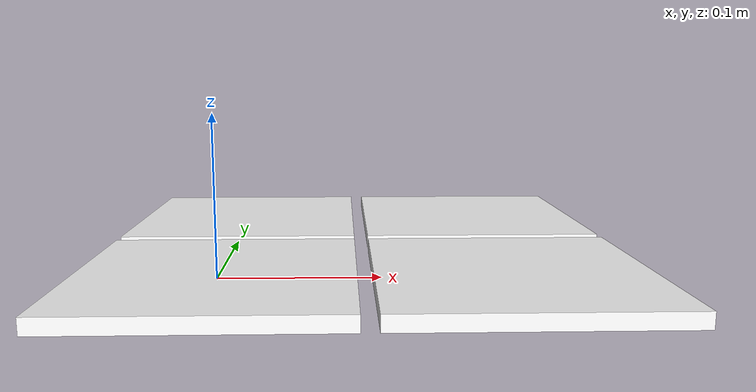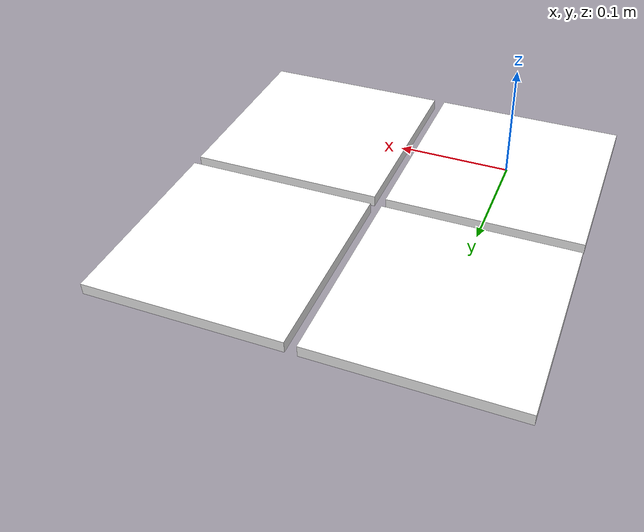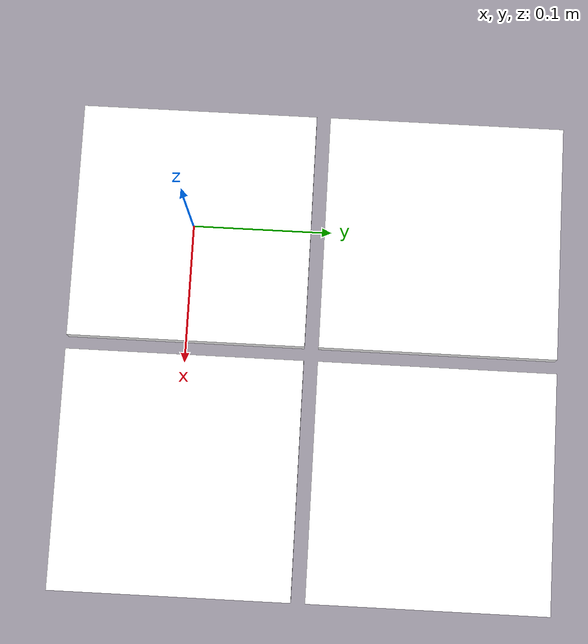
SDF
<sdf version='1.7'>
  <model name='apriltag_board'>
    <link name='tag_0'>
      <pose>0 0 0 0 -0 0</pose>
      <visual name='main_Visual'>
      <pose>0 0 0 0 0 3.14159</pose>
        <geometry>
          <box>
            <size>0.17 0.17 0.01</size>
          </box>
        </geometry>
        <material>
          <ambient>1 1 1 1</ambient>
          <diffuse>1 1 1 1</diffuse>
          <specular>0.1 0.1 0.1 1</specular>
          <pbr>
            <metal>
              <albedo_map>model://Apriltag36_11_00000/materials/textures/tag36_11_00000.png</albedo_map>
              <roughness>0.9</roughness>
              <metalness>0</metalness>
            </metal>
          </pbr>
          <script>
            <uri>model://Apriltag36_11_00000/materials/scripts</uri>
            <uri>model://Apriltag36_11_00000/materials/textures</uri>
            <name>Apriltag36_11_00000</name>
          </script>
        </material>
      </visual>
      <self_collide>0</self_collide>
      <enable_wind>0</enable_wind>
      <kinematic>0</kinematic>
    </link>
    <link name='tag_1'>
      <pose>0.18 0 0 0 -0 0</pose>
      <visual name='main_Visual'>
      <pose>0 0 0 0 0 3.14159</pose>
        <geometry>
          <box>
            <size>0.17 0.17 0.01</size>
          </box>
        </geometry>
        <material>
          <ambient>1 1 1 1</ambient>
          <diffuse>1 1 1 1</diffuse>
          <specular>0.1 0.1 0.1 1</specular>
          <pbr>
            <metal>
              <albedo_map>model://Apriltag36_11_00001/materials/textures/tag36_11_00001.png</albedo_map>
              <roughness>0.9</roughness>
              <metalness>0</metalness>
            </metal>
          </pbr>
          <script>
            <uri>model://Apriltag36_11_00001/materials/scripts</uri>
            <uri>model://Apriltag36_11_00001/materials/textures</uri>
            <name>Apriltag36_11_00001</name>
          </script>
        </material>
      </visual>
      <self_collide>0</self_collide>
      <enable_wind>0</enable_wind>
      <kinematic>0</kinematic>
    </link>
    <link name='tag_2'>
      <pose>0.18 0.18 0 0 -0 0</pose>
      <visual name='main_Visual'>
      <pose>0 0 0 0 0 3.14159</pose>
        <geometry>
          <box>
            <size>0.17 0.17 0.01</size>
          </box>
        </geometry>
        <material>
          <ambient>1 1 1 1</ambient>
          <diffuse>1 1 1 1</diffuse>
          <specular>0.1 0.1 0.1 1</specular>
          <pbr>
            <metal>
              <albedo_map>model://Apriltag36_11_00002/materials/textures/tag36_11_00002.png</albedo_map>
              <roughness>0.9</roughness>
              <metalness>0</metalness>
            </metal>
          </pbr>
          <script>
            <uri>model://Apriltag36_11_00002/materials/scripts</uri>
            <uri>model://Apriltag36_11_00002/materials/textures</uri>
            <name>Apriltag36_11_00002</name>
          </script>
        </material>
      </visual>
      <self_collide>0</self_collide>
      <enable_wind>0</enable_wind>
      <kinematic>0</kinematic>
    </link>
    <link name='tag_3'>
      <pose>0 0.18 0 0 -0 0</pose>
      <visual name='main_Visual'>
      <pose>0 0 0 0 0 3.14159</pose>
        <geometry>
          <box>
            <size>0.17 0.17 0.01</size>
          </box>
        </geometry>
        <material>
          <ambient>1 1 1 1</ambient>
          <diffuse>1 1 1 1</diffuse>
          <specular>0.1 0.1 0.1 1</specular>
          <pbr>
            <metal>
              <albedo_map>model://Apriltag36_11_00003/materials/textures/tag36_11_00003.png</albedo_map>
              <roughness>0.9</roughness>
              <metalness>0</metalness>
            </metal>
          </pbr>
          <script>
            <uri>model://Apriltag36_11_00003/materials/scripts</uri>
            <uri>model://Apriltag36_11_00003/materials/textures</uri>
            <name>Apriltag36_11_00003</name>
          </script>
        </material>
      </visual>
      <self_collide>0</self_collide>
      <enable_wind>0</enable_wind>
      <kinematic>0</kinematic>
    </link>
    <static>1</static>
  </model>
</sdf>
